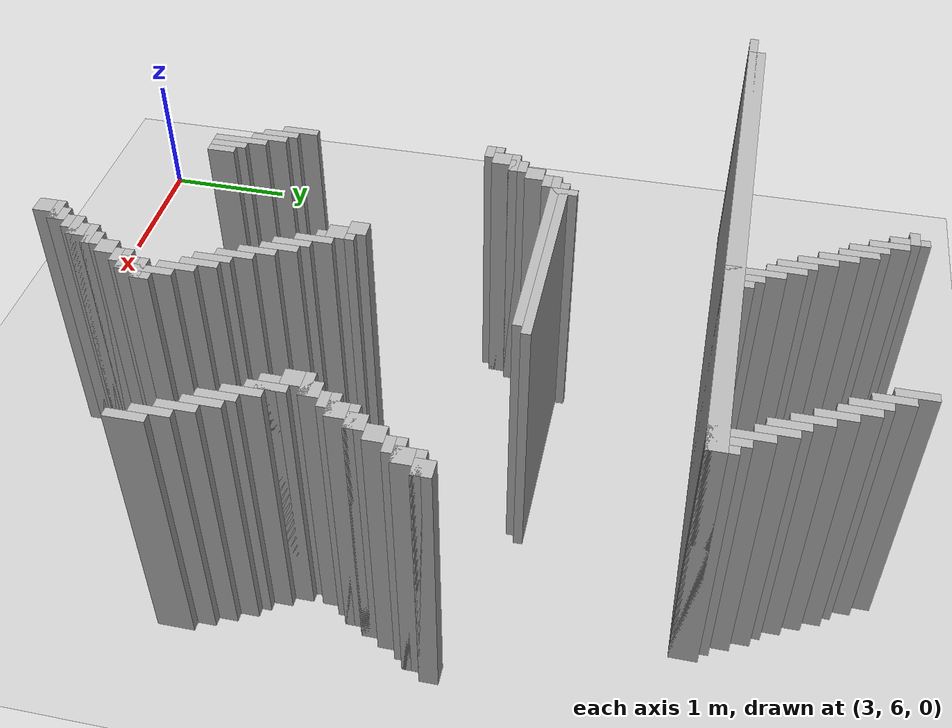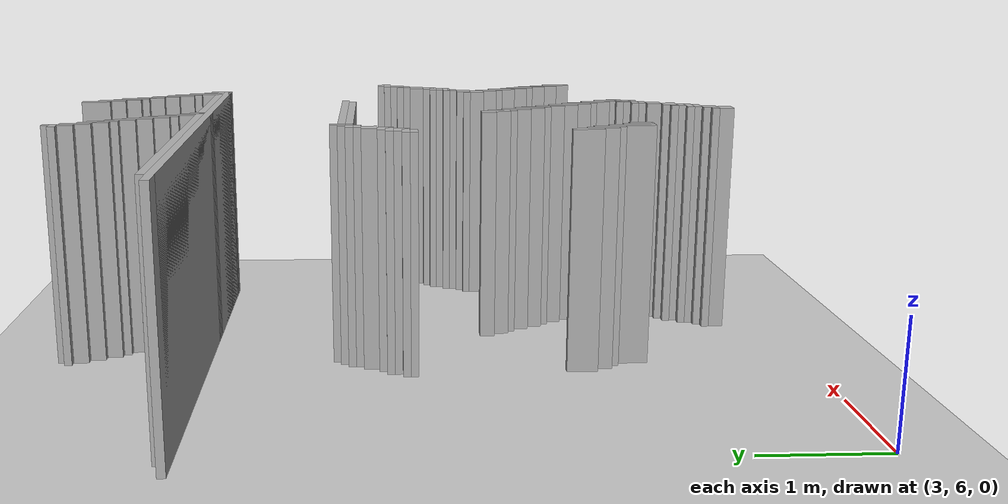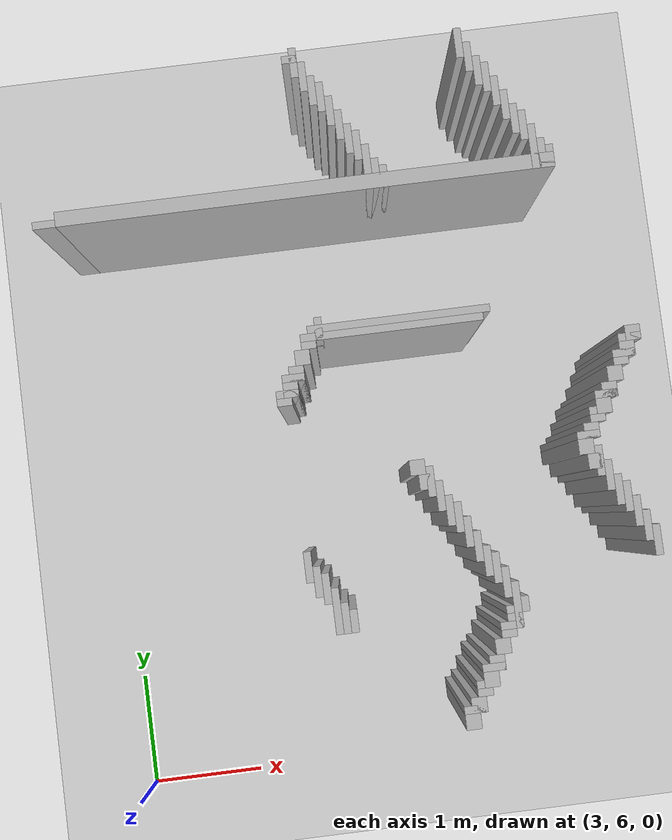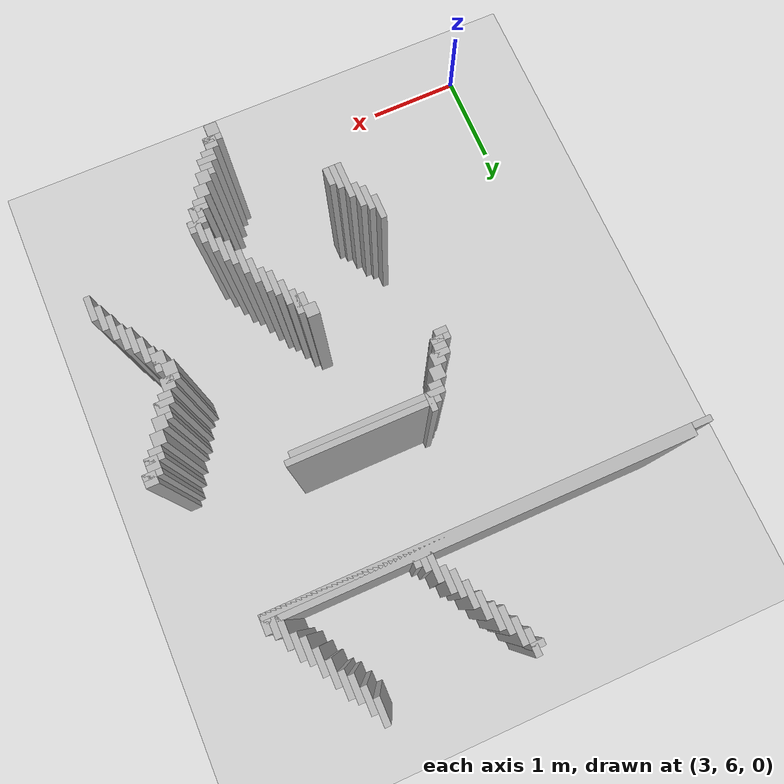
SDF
<sdf version="1.6">
 <world name="slam_world">
  <model name="ground_plane">
   <static>true</static>
   <link name="link">
    <collision name="collision">
     <geometry><plane><normal>0 0 1</normal><size>100 100</size></plane></geometry>
    </collision>
    <visual name="visual">
     <geometry><plane><normal>0 0 1</normal><size>100 100</size></plane></geometry>
     <material>
      <ambient>0.8 0.8 0.8 1</ambient>
      <diffuse>0.8 0.8 0.8 1</diffuse>
      <specular>0.8 0.8 0.8 1</specular>
     </material>
    </visual>
   </link>
  </model>
  <model name="wall_1166">
   <static>true</static>
   <pose>5.138297872340425 12.127659574468083 1.0 0 0 0</pose>
   <link name="link">
    <collision name="collision">
     <geometry><box><size>0.06382978723404255 0.2553191489361702 2.0</size></box></geometry>
    </collision>
    <visual name="visual">
     <geometry><box><size>0.06382978723404255 0.2553191489361702 2.0</size></box></geometry>
     <material><ambient>0.5 0.5 0.5 1</ambient><diffuse>0.7 0.7 0.7 1</diffuse></material>
    </visual>
   </link>
  </model>
  <model name="wall_1167">
   <static>true</static>
   <pose>6.542553191489361 12.127659574468083 1.0 0 0 0</pose>
   <link name="link">
    <collision name="collision">
     <geometry><box><size>0.06382978723404255 0.2553191489361702 2.0</size></box></geometry>
    </collision>
    <visual name="visual">
     <geometry><box><size>0.06382978723404255 0.2553191489361702 2.0</size></box></geometry>
     <material><ambient>0.5 0.5 0.5 1</ambient><diffuse>0.7 0.7 0.7 1</diffuse></material>
    </visual>
   </link>
  </model>
  <model name="wall_1173">
   <static>true</static>
   <pose>5.106382978723404 12.159574468085106 1.0 0 0 0</pose>
   <link name="link">
    <collision name="collision">
     <geometry><box><size>0.1276595744680851 0.06382978723404255 2.0</size></box></geometry>
    </collision>
    <visual name="visual">
     <geometry><box><size>0.1276595744680851 0.06382978723404255 2.0</size></box></geometry>
     <material><ambient>0.5 0.5 0.5 1</ambient><diffuse>0.7 0.7 0.7 1</diffuse></material>
    </visual>
   </link>
  </model>
  <model name="wall_1181">
   <static>true</static>
   <pose>5.202127659574468 11.999999999999998 1.0 0 0 0</pose>
   <link name="link">
    <collision name="collision">
     <geometry><box><size>0.06382978723404255 0.2553191489361702 2.0</size></box></geometry>
    </collision>
    <visual name="visual">
     <geometry><box><size>0.06382978723404255 0.2553191489361702 2.0</size></box></geometry>
     <material><ambient>0.5 0.5 0.5 1</ambient><diffuse>0.7 0.7 0.7 1</diffuse></material>
    </visual>
   </link>
  </model>
  <model name="wall_1182">
   <static>true</static>
   <pose>6.606382978723404 11.999999999999998 1.0 0 0 0</pose>
   <link name="link">
    <collision name="collision">
     <geometry><box><size>0.06382978723404255 0.2553191489361702 2.0</size></box></geometry>
    </collision>
    <visual name="visual">
     <geometry><box><size>0.06382978723404255 0.2553191489361702 2.0</size></box></geometry>
     <material><ambient>0.5 0.5 0.5 1</ambient><diffuse>0.7 0.7 0.7 1</diffuse></material>
    </visual>
   </link>
  </model>
  <model name="wall_1190">
   <static>true</static>
   <pose>5.26595744680851 11.872340425531913 1.0 0 0 0</pose>
   <link name="link">
    <collision name="collision">
     <geometry><box><size>0.06382978723404255 0.2553191489361702 2.0</size></box></geometry>
    </collision>
    <visual name="visual">
     <geometry><box><size>0.06382978723404255 0.2553191489361702 2.0</size></box></geometry>
     <material><ambient>0.5 0.5 0.5 1</ambient><diffuse>0.7 0.7 0.7 1</diffuse></material>
    </visual>
   </link>
  </model>
  <model name="wall_1191">
   <static>true</static>
   <pose>6.670212765957446 11.872340425531913 1.0 0 0 0</pose>
   <link name="link">
    <collision name="collision">
     <geometry><box><size>0.06382978723404255 0.2553191489361702 2.0</size></box></geometry>
    </collision>
    <visual name="visual">
     <geometry><box><size>0.06382978723404255 0.2553191489361702 2.0</size></box></geometry>
     <material><ambient>0.5 0.5 0.5 1</ambient><diffuse>0.7 0.7 0.7 1</diffuse></material>
    </visual>
   </link>
  </model>
  <model name="wall_1199">
   <static>true</static>
   <pose>5.329787234042553 11.808510638297872 1.0 0 0 0</pose>
   <link name="link">
    <collision name="collision">
     <geometry><box><size>0.06382978723404255 0.2553191489361702 2.0</size></box></geometry>
    </collision>
    <visual name="visual">
     <geometry><box><size>0.06382978723404255 0.2553191489361702 2.0</size></box></geometry>
     <material><ambient>0.5 0.5 0.5 1</ambient><diffuse>0.7 0.7 0.7 1</diffuse></material>
    </visual>
   </link>
  </model>
  <model name="wall_1200">
   <static>true</static>
   <pose>6.734042553191489 11.808510638297872 1.0 0 0 0</pose>
   <link name="link">
    <collision name="collision">
     <geometry><box><size>0.06382978723404255 0.2553191489361702 2.0</size></box></geometry>
    </collision>
    <visual name="visual">
     <geometry><box><size>0.06382978723404255 0.2553191489361702 2.0</size></box></geometry>
     <material><ambient>0.5 0.5 0.5 1</ambient><diffuse>0.7 0.7 0.7 1</diffuse></material>
    </visual>
   </link>
  </model>
  <model name="wall_1213">
   <static>true</static>
   <pose>5.3936170212765955 11.680851063829786 1.0 0 0 0</pose>
   <link name="link">
    <collision name="collision">
     <geometry><box><size>0.06382978723404255 0.2553191489361702 2.0</size></box></geometry>
    </collision>
    <visual name="visual">
     <geometry><box><size>0.06382978723404255 0.2553191489361702 2.0</size></box></geometry>
     <material><ambient>0.5 0.5 0.5 1</ambient><diffuse>0.7 0.7 0.7 1</diffuse></material>
    </visual>
   </link>
  </model>
  <model name="wall_1214">
   <static>true</static>
   <pose>6.797872340425531 11.680851063829786 1.0 0 0 0</pose>
   <link name="link">
    <collision name="collision">
     <geometry><box><size>0.06382978723404255 0.2553191489361702 2.0</size></box></geometry>
    </collision>
    <visual name="visual">
     <geometry><box><size>0.06382978723404255 0.2553191489361702 2.0</size></box></geometry>
     <material><ambient>0.5 0.5 0.5 1</ambient><diffuse>0.7 0.7 0.7 1</diffuse></material>
    </visual>
   </link>
  </model>
  <model name="wall_1226">
   <static>true</static>
   <pose>5.457446808510638 11.553191489361701 1.0 0 0 0</pose>
   <link name="link">
    <collision name="collision">
     <geometry><box><size>0.06382978723404255 0.2553191489361702 2.0</size></box></geometry>
    </collision>
    <visual name="visual">
     <geometry><box><size>0.06382978723404255 0.2553191489361702 2.0</size></box></geometry>
     <material><ambient>0.5 0.5 0.5 1</ambient><diffuse>0.7 0.7 0.7 1</diffuse></material>
    </visual>
   </link>
  </model>
  <model name="wall_1227">
   <static>true</static>
   <pose>6.861702127659574 11.553191489361701 1.0 0 0 0</pose>
   <link name="link">
    <collision name="collision">
     <geometry><box><size>0.06382978723404255 0.2553191489361702 2.0</size></box></geometry>
    </collision>
    <visual name="visual">
     <geometry><box><size>0.06382978723404255 0.2553191489361702 2.0</size></box></geometry>
     <material><ambient>0.5 0.5 0.5 1</ambient><diffuse>0.7 0.7 0.7 1</diffuse></material>
    </visual>
   </link>
  </model>
  <model name="wall_1235">
   <static>true</static>
   <pose>5.5212765957446805 11.425531914893616 1.0 0 0 0</pose>
   <link name="link">
    <collision name="collision">
     <geometry><box><size>0.06382978723404255 0.2553191489361702 2.0</size></box></geometry>
    </collision>
    <visual name="visual">
     <geometry><box><size>0.06382978723404255 0.2553191489361702 2.0</size></box></geometry>
     <material><ambient>0.5 0.5 0.5 1</ambient><diffuse>0.7 0.7 0.7 1</diffuse></material>
    </visual>
   </link>
  </model>
  <model name="wall_1236">
   <static>true</static>
   <pose>6.925531914893616 11.425531914893616 1.0 0 0 0</pose>
   <link name="link">
    <collision name="collision">
     <geometry><box><size>0.06382978723404255 0.2553191489361702 2.0</size></box></geometry>
    </collision>
    <visual name="visual">
     <geometry><box><size>0.06382978723404255 0.2553191489361702 2.0</size></box></geometry>
     <material><ambient>0.5 0.5 0.5 1</ambient><diffuse>0.7 0.7 0.7 1</diffuse></material>
    </visual>
   </link>
  </model>
  <model name="wall_1244">
   <static>true</static>
   <pose>5.585106382978723 11.361702127659573 1.0 0 0 0</pose>
   <link name="link">
    <collision name="collision">
     <geometry><box><size>0.06382978723404255 0.2553191489361702 2.0</size></box></geometry>
    </collision>
    <visual name="visual">
     <geometry><box><size>0.06382978723404255 0.2553191489361702 2.0</size></box></geometry>
     <material><ambient>0.5 0.5 0.5 1</ambient><diffuse>0.7 0.7 0.7 1</diffuse></material>
    </visual>
   </link>
  </model>
  <model name="wall_1245">
   <static>true</static>
   <pose>6.989361702127659 11.361702127659573 1.0 0 0 0</pose>
   <link name="link">
    <collision name="collision">
     <geometry><box><size>0.06382978723404255 0.2553191489361702 2.0</size></box></geometry>
    </collision>
    <visual name="visual">
     <geometry><box><size>0.06382978723404255 0.2553191489361702 2.0</size></box></geometry>
     <material><ambient>0.5 0.5 0.5 1</ambient><diffuse>0.7 0.7 0.7 1</diffuse></material>
    </visual>
   </link>
  </model>
  <model name="wall_1257">
   <static>true</static>
   <pose>5.648936170212766 11.170212765957446 1.0 0 0 0</pose>
   <link name="link">
    <collision name="collision">
     <geometry><box><size>0.06382978723404255 0.3829787234042553 2.0</size></box></geometry>
    </collision>
    <visual name="visual">
     <geometry><box><size>0.06382978723404255 0.3829787234042553 2.0</size></box></geometry>
     <material><ambient>0.5 0.5 0.5 1</ambient><diffuse>0.7 0.7 0.7 1</diffuse></material>
    </visual>
   </link>
  </model>
  <model name="wall_1258">
   <static>true</static>
   <pose>7.053191489361701 11.170212765957446 1.0 0 0 0</pose>
   <link name="link">
    <collision name="collision">
     <geometry><box><size>0.06382978723404255 0.3829787234042553 2.0</size></box></geometry>
    </collision>
    <visual name="visual">
     <geometry><box><size>0.06382978723404255 0.3829787234042553 2.0</size></box></geometry>
     <material><ambient>0.5 0.5 0.5 1</ambient><diffuse>0.7 0.7 0.7 1</diffuse></material>
    </visual>
   </link>
  </model>
  <model name="wall_1270">
   <static>true</static>
   <pose>5.712765957446808 11.106382978723403 1.0 0 0 0</pose>
   <link name="link">
    <collision name="collision">
     <geometry><box><size>0.06382978723404255 0.2553191489361702 2.0</size></box></geometry>
    </collision>
    <visual name="visual">
     <geometry><box><size>0.06382978723404255 0.2553191489361702 2.0</size></box></geometry>
     <material><ambient>0.5 0.5 0.5 1</ambient><diffuse>0.7 0.7 0.7 1</diffuse></material>
    </visual>
   </link>
  </model>
  <model name="wall_1271">
   <static>true</static>
   <pose>7.117021276595744 11.106382978723403 1.0 0 0 0</pose>
   <link name="link">
    <collision name="collision">
     <geometry><box><size>0.06382978723404255 0.2553191489361702 2.0</size></box></geometry>
    </collision>
    <visual name="visual">
     <geometry><box><size>0.06382978723404255 0.2553191489361702 2.0</size></box></geometry>
     <material><ambient>0.5 0.5 0.5 1</ambient><diffuse>0.7 0.7 0.7 1</diffuse></material>
    </visual>
   </link>
  </model>
  <model name="wall_1278">
   <static>true</static>
   <pose>5.776595744680851 11.074468085106382 1.0 0 0 0</pose>
   <link name="link">
    <collision name="collision">
     <geometry><box><size>0.06382978723404255 0.19148936170212766 2.0</size></box></geometry>
    </collision>
    <visual name="visual">
     <geometry><box><size>0.06382978723404255 0.19148936170212766 2.0</size></box></geometry>
     <material><ambient>0.5 0.5 0.5 1</ambient><diffuse>0.7 0.7 0.7 1</diffuse></material>
    </visual>
   </link>
  </model>
  <model name="wall_1279">
   <static>true</static>
   <pose>7.180851063829786 11.074468085106382 1.0 0 0 0</pose>
   <link name="link">
    <collision name="collision">
     <geometry><box><size>0.06382978723404255 0.19148936170212766 2.0</size></box></geometry>
    </collision>
    <visual name="visual">
     <geometry><box><size>0.06382978723404255 0.19148936170212766 2.0</size></box></geometry>
     <material><ambient>0.5 0.5 0.5 1</ambient><diffuse>0.7 0.7 0.7 1</diffuse></material>
    </visual>
   </link>
  </model>
  <model name="wall_1284">
   <static>true</static>
   <pose>5.106382978723404 11.042553191489361 1.0 0 0 0</pose>
   <link name="link">
    <collision name="collision">
     <geometry><box><size>4.212765957446808 0.1276595744680851 2.0</size></box></geometry>
    </collision>
    <visual name="visual">
     <geometry><box><size>4.212765957446808 0.1276595744680851 2.0</size></box></geometry>
     <material><ambient>0.5 0.5 0.5 1</ambient><diffuse>0.7 0.7 0.7 1</diffuse></material>
    </visual>
   </link>
  </model>
  <model name="wall_1289">
   <static>true</static>
   <pose>5.01063829787234 11.01063829787234 1.0 0 0 0</pose>
   <link name="link">
    <collision name="collision">
     <geometry><box><size>4.404255319148936 0.06382978723404255 2.0</size></box></geometry>
    </collision>
    <visual name="visual">
     <geometry><box><size>4.404255319148936 0.06382978723404255 2.0</size></box></geometry>
     <material><ambient>0.5 0.5 0.5 1</ambient><diffuse>0.7 0.7 0.7 1</diffuse></material>
    </visual>
   </link>
  </model>
  <model name="wall_1352">
   <static>true</static>
   <pose>5.074468085106383 9.861702127659573 1.0 0 0 0</pose>
   <link name="link">
    <collision name="collision">
     <geometry><box><size>0.06382978723404255 0.19148936170212766 2.0</size></box></geometry>
    </collision>
    <visual name="visual">
     <geometry><box><size>0.06382978723404255 0.19148936170212766 2.0</size></box></geometry>
     <material><ambient>0.5 0.5 0.5 1</ambient><diffuse>0.7 0.7 0.7 1</diffuse></material>
    </visual>
   </link>
  </model>
  <model name="wall_1356">
   <static>true</static>
   <pose>5.744680851063829 9.861702127659573 1.0 0 0 0</pose>
   <link name="link">
    <collision name="collision">
     <geometry><box><size>1.5319148936170213 0.06382978723404255 2.0</size></box></geometry>
    </collision>
    <visual name="visual">
     <geometry><box><size>1.5319148936170213 0.06382978723404255 2.0</size></box></geometry>
     <material><ambient>0.5 0.5 0.5 1</ambient><diffuse>0.7 0.7 0.7 1</diffuse></material>
    </visual>
   </link>
  </model>
  <model name="wall_1365">
   <static>true</static>
   <pose>5.680851063829786 9.797872340425531 1.0 0 0 0</pose>
   <link name="link">
    <collision name="collision">
     <geometry><box><size>1.5319148936170213 0.06382978723404255 2.0</size></box></geometry>
    </collision>
    <visual name="visual">
     <geometry><box><size>1.5319148936170213 0.06382978723404255 2.0</size></box></geometry>
     <material><ambient>0.5 0.5 0.5 1</ambient><diffuse>0.7 0.7 0.7 1</diffuse></material>
    </visual>
   </link>
  </model>
  <model name="wall_1373">
   <static>true</static>
   <pose>4.978723404255319 9.734042553191488 1.0 0 0 0</pose>
   <link name="link">
    <collision name="collision">
     <geometry><box><size>0.1276595744680851 0.06382978723404255 2.0</size></box></geometry>
    </collision>
    <visual name="visual">
     <geometry><box><size>0.1276595744680851 0.06382978723404255 2.0</size></box></geometry>
     <material><ambient>0.5 0.5 0.5 1</ambient><diffuse>0.7 0.7 0.7 1</diffuse></material>
    </visual>
   </link>
  </model>
  <model name="wall_1381">
   <static>true</static>
   <pose>4.914893617021276 9.638297872340425 1.0 0 0 0</pose>
   <link name="link">
    <collision name="collision">
     <geometry><box><size>0.1276595744680851 0.1276595744680851 2.0</size></box></geometry>
    </collision>
    <visual name="visual">
     <geometry><box><size>0.1276595744680851 0.1276595744680851 2.0</size></box></geometry>
     <material><ambient>0.5 0.5 0.5 1</ambient><diffuse>0.7 0.7 0.7 1</diffuse></material>
    </visual>
   </link>
  </model>
  <model name="wall_1392">
   <static>true</static>
   <pose>4.8510638297872335 9.51063829787234 1.0 0 0 0</pose>
   <link name="link">
    <collision name="collision">
     <geometry><box><size>0.1276595744680851 0.1276595744680851 2.0</size></box></geometry>
    </collision>
    <visual name="visual">
     <geometry><box><size>0.1276595744680851 0.1276595744680851 2.0</size></box></geometry>
     <material><ambient>0.5 0.5 0.5 1</ambient><diffuse>0.7 0.7 0.7 1</diffuse></material>
    </visual>
   </link>
  </model>
  <model name="wall_1393">
   <static>true</static>
   <pose>7.659574468085106 9.51063829787234 1.0 0 0 0</pose>
   <link name="link">
    <collision name="collision">
     <geometry><box><size>0.1276595744680851 0.1276595744680851 2.0</size></box></geometry>
    </collision>
    <visual name="visual">
     <geometry><box><size>0.1276595744680851 0.1276595744680851 2.0</size></box></geometry>
     <material><ambient>0.5 0.5 0.5 1</ambient><diffuse>0.7 0.7 0.7 1</diffuse></material>
    </visual>
   </link>
  </model>
  <model name="wall_1403">
   <static>true</static>
   <pose>4.819148936170213 9.478723404255318 1.0 0 0 0</pose>
   <link name="link">
    <collision name="collision">
     <geometry><box><size>0.19148936170212766 0.06382978723404255 2.0</size></box></geometry>
    </collision>
    <visual name="visual">
     <geometry><box><size>0.19148936170212766 0.06382978723404255 2.0</size></box></geometry>
     <material><ambient>0.5 0.5 0.5 1</ambient><diffuse>0.7 0.7 0.7 1</diffuse></material>
    </visual>
   </link>
  </model>
  <model name="wall_1404">
   <static>true</static>
   <pose>7.627659574468084 9.478723404255318 1.0 0 0 0</pose>
   <link name="link">
    <collision name="collision">
     <geometry><box><size>0.19148936170212766 0.06382978723404255 2.0</size></box></geometry>
    </collision>
    <visual name="visual">
     <geometry><box><size>0.19148936170212766 0.06382978723404255 2.0</size></box></geometry>
     <material><ambient>0.5 0.5 0.5 1</ambient><diffuse>0.7 0.7 0.7 1</diffuse></material>
    </visual>
   </link>
  </model>
  <model name="wall_1412">
   <static>true</static>
   <pose>4.787234042553191 9.382978723404255 1.0 0 0 0</pose>
   <link name="link">
    <collision name="collision">
     <geometry><box><size>0.1276595744680851 0.1276595744680851 2.0</size></box></geometry>
    </collision>
    <visual name="visual">
     <geometry><box><size>0.1276595744680851 0.1276595744680851 2.0</size></box></geometry>
     <material><ambient>0.5 0.5 0.5 1</ambient><diffuse>0.7 0.7 0.7 1</diffuse></material>
    </visual>
   </link>
  </model>
  <model name="wall_1413">
   <static>true</static>
   <pose>7.595744680851063 9.382978723404255 1.0 0 0 0</pose>
   <link name="link">
    <collision name="collision">
     <geometry><box><size>0.1276595744680851 0.1276595744680851 2.0</size></box></geometry>
    </collision>
    <visual name="visual">
     <geometry><box><size>0.1276595744680851 0.1276595744680851 2.0</size></box></geometry>
     <material><ambient>0.5 0.5 0.5 1</ambient><diffuse>0.7 0.7 0.7 1</diffuse></material>
    </visual>
   </link>
  </model>
  <model name="wall_1422">
   <static>true</static>
   <pose>4.75531914893617 9.351063829787233 1.0 0 0 0</pose>
   <link name="link">
    <collision name="collision">
     <geometry><box><size>0.19148936170212766 0.06382978723404255 2.0</size></box></geometry>
    </collision>
    <visual name="visual">
     <geometry><box><size>0.19148936170212766 0.06382978723404255 2.0</size></box></geometry>
     <material><ambient>0.5 0.5 0.5 1</ambient><diffuse>0.7 0.7 0.7 1</diffuse></material>
    </visual>
   </link>
  </model>
  <model name="wall_1423">
   <static>true</static>
   <pose>7.563829787234042 9.351063829787233 1.0 0 0 0</pose>
   <link name="link">
    <collision name="collision">
     <geometry><box><size>0.19148936170212766 0.06382978723404255 2.0</size></box></geometry>
    </collision>
    <visual name="visual">
     <geometry><box><size>0.19148936170212766 0.06382978723404255 2.0</size></box></geometry>
     <material><ambient>0.5 0.5 0.5 1</ambient><diffuse>0.7 0.7 0.7 1</diffuse></material>
    </visual>
   </link>
  </model>
  <model name="wall_1430">
   <static>true</static>
   <pose>4.723404255319148 9.287234042553191 1.0 0 0 0</pose>
   <link name="link">
    <collision name="collision">
     <geometry><box><size>0.1276595744680851 0.06382978723404255 2.0</size></box></geometry>
    </collision>
    <visual name="visual">
     <geometry><box><size>0.1276595744680851 0.06382978723404255 2.0</size></box></geometry>
     <material><ambient>0.5 0.5 0.5 1</ambient><diffuse>0.7 0.7 0.7 1</diffuse></material>
    </visual>
   </link>
  </model>
  <model name="wall_1431">
   <static>true</static>
   <pose>7.531914893617021 9.287234042553191 1.0 0 0 0</pose>
   <link name="link">
    <collision name="collision">
     <geometry><box><size>0.1276595744680851 0.06382978723404255 2.0</size></box></geometry>
    </collision>
    <visual name="visual">
     <geometry><box><size>0.1276595744680851 0.06382978723404255 2.0</size></box></geometry>
     <material><ambient>0.5 0.5 0.5 1</ambient><diffuse>0.7 0.7 0.7 1</diffuse></material>
    </visual>
   </link>
  </model>
  <model name="wall_1440">
   <static>true</static>
   <pose>7.468085106382978 9.191489361702127 1.0 0 0 0</pose>
   <link name="link">
    <collision name="collision">
     <geometry><box><size>0.1276595744680851 0.1276595744680851 2.0</size></box></geometry>
    </collision>
    <visual name="visual">
     <geometry><box><size>0.1276595744680851 0.1276595744680851 2.0</size></box></geometry>
     <material><ambient>0.5 0.5 0.5 1</ambient><diffuse>0.7 0.7 0.7 1</diffuse></material>
    </visual>
   </link>
  </model>
  <model name="wall_1451">
   <static>true</static>
   <pose>7.404255319148936 9.063829787234042 1.0 0 0 0</pose>
   <link name="link">
    <collision name="collision">
     <geometry><box><size>0.1276595744680851 0.1276595744680851 2.0</size></box></geometry>
    </collision>
    <visual name="visual">
     <geometry><box><size>0.1276595744680851 0.1276595744680851 2.0</size></box></geometry>
     <material><ambient>0.5 0.5 0.5 1</ambient><diffuse>0.7 0.7 0.7 1</diffuse></material>
    </visual>
   </link>
  </model>
  <model name="wall_1462">
   <static>true</static>
   <pose>7.372340425531914 9.03191489361702 1.0 0 0 0</pose>
   <link name="link">
    <collision name="collision">
     <geometry><box><size>0.19148936170212766 0.06382978723404255 2.0</size></box></geometry>
    </collision>
    <visual name="visual">
     <geometry><box><size>0.19148936170212766 0.06382978723404255 2.0</size></box></geometry>
     <material><ambient>0.5 0.5 0.5 1</ambient><diffuse>0.7 0.7 0.7 1</diffuse></material>
    </visual>
   </link>
  </model>
  <model name="wall_1470">
   <static>true</static>
   <pose>7.340425531914893 8.936170212765957 1.0 0 0 0</pose>
   <link name="link">
    <collision name="collision">
     <geometry><box><size>0.1276595744680851 0.1276595744680851 2.0</size></box></geometry>
    </collision>
    <visual name="visual">
     <geometry><box><size>0.1276595744680851 0.1276595744680851 2.0</size></box></geometry>
     <material><ambient>0.5 0.5 0.5 1</ambient><diffuse>0.7 0.7 0.7 1</diffuse></material>
    </visual>
   </link>
  </model>
  <model name="wall_1479">
   <static>true</static>
   <pose>7.3085106382978715 8.904255319148936 1.0 0 0 0</pose>
   <link name="link">
    <collision name="collision">
     <geometry><box><size>0.19148936170212766 0.06382978723404255 2.0</size></box></geometry>
    </collision>
    <visual name="visual">
     <geometry><box><size>0.19148936170212766 0.06382978723404255 2.0</size></box></geometry>
     <material><ambient>0.5 0.5 0.5 1</ambient><diffuse>0.7 0.7 0.7 1</diffuse></material>
    </visual>
   </link>
  </model>
  <model name="wall_1487">
   <static>true</static>
   <pose>7.276595744680851 8.840425531914892 1.0 0 0 0</pose>
   <link name="link">
    <collision name="collision">
     <geometry><box><size>0.1276595744680851 0.06382978723404255 2.0</size></box></geometry>
    </collision>
    <visual name="visual">
     <geometry><box><size>0.1276595744680851 0.06382978723404255 2.0</size></box></geometry>
     <material><ambient>0.5 0.5 0.5 1</ambient><diffuse>0.7 0.7 0.7 1</diffuse></material>
    </visual>
   </link>
  </model>
  <model name="wall_1495">
   <static>true</static>
   <pose>7.212765957446808 8.74468085106383 1.0 0 0 0</pose>
   <link name="link">
    <collision name="collision">
     <geometry><box><size>0.1276595744680851 0.1276595744680851 2.0</size></box></geometry>
    </collision>
    <visual name="visual">
     <geometry><box><size>0.1276595744680851 0.1276595744680851 2.0</size></box></geometry>
     <material><ambient>0.5 0.5 0.5 1</ambient><diffuse>0.7 0.7 0.7 1</diffuse></material>
    </visual>
   </link>
  </model>
  <model name="wall_1503">
   <static>true</static>
   <pose>7.180851063829786 8.712765957446807 1.0 0 0 0</pose>
   <link name="link">
    <collision name="collision">
     <geometry><box><size>0.19148936170212766 0.06382978723404255 2.0</size></box></geometry>
    </collision>
    <visual name="visual">
     <geometry><box><size>0.19148936170212766 0.06382978723404255 2.0</size></box></geometry>
     <material><ambient>0.5 0.5 0.5 1</ambient><diffuse>0.7 0.7 0.7 1</diffuse></material>
    </visual>
   </link>
  </model>
  <model name="wall_1510">
   <static>true</static>
   <pose>5.744680851063829 8.617021276595745 1.0 0 0 0</pose>
   <link name="link">
    <collision name="collision">
     <geometry><box><size>0.1276595744680851 0.1276595744680851 2.0</size></box></geometry>
    </collision>
    <visual name="visual">
     <geometry><box><size>0.1276595744680851 0.1276595744680851 2.0</size></box></geometry>
     <material><ambient>0.5 0.5 0.5 1</ambient><diffuse>0.7 0.7 0.7 1</diffuse></material>
    </visual>
   </link>
  </model>
  <model name="wall_1511">
   <static>true</static>
   <pose>7.148936170212766 8.617021276595745 1.0 0 0 0</pose>
   <link name="link">
    <collision name="collision">
     <geometry><box><size>0.1276595744680851 0.1276595744680851 2.0</size></box></geometry>
    </collision>
    <visual name="visual">
     <geometry><box><size>0.1276595744680851 0.1276595744680851 2.0</size></box></geometry>
     <material><ambient>0.5 0.5 0.5 1</ambient><diffuse>0.7 0.7 0.7 1</diffuse></material>
    </visual>
   </link>
  </model>
  <model name="wall_1519">
   <static>true</static>
   <pose>5.840425531914893 8.48936170212766 1.0 0 0 0</pose>
   <link name="link">
    <collision name="collision">
     <geometry><box><size>0.06382978723404255 0.2553191489361702 2.0</size></box></geometry>
    </collision>
    <visual name="visual">
     <geometry><box><size>0.06382978723404255 0.2553191489361702 2.0</size></box></geometry>
     <material><ambient>0.5 0.5 0.5 1</ambient><diffuse>0.7 0.7 0.7 1</diffuse></material>
    </visual>
   </link>
  </model>
  <model name="wall_1520">
   <static>true</static>
   <pose>7.244680851063829 8.48936170212766 1.0 0 0 0</pose>
   <link name="link">
    <collision name="collision">
     <geometry><box><size>0.06382978723404255 0.2553191489361702 2.0</size></box></geometry>
    </collision>
    <visual name="visual">
     <geometry><box><size>0.06382978723404255 0.2553191489361702 2.0</size></box></geometry>
     <material><ambient>0.5 0.5 0.5 1</ambient><diffuse>0.7 0.7 0.7 1</diffuse></material>
    </visual>
   </link>
  </model>
  <model name="wall_1526">
   <static>true</static>
   <pose>5.8085106382978715 8.48936170212766 1.0 0 0 0</pose>
   <link name="link">
    <collision name="collision">
     <geometry><box><size>0.1276595744680851 0.1276595744680851 2.0</size></box></geometry>
    </collision>
    <visual name="visual">
     <geometry><box><size>0.1276595744680851 0.1276595744680851 2.0</size></box></geometry>
     <material><ambient>0.5 0.5 0.5 1</ambient><diffuse>0.7 0.7 0.7 1</diffuse></material>
    </visual>
   </link>
  </model>
  <model name="wall_1527">
   <static>true</static>
   <pose>7.212765957446808 8.48936170212766 1.0 0 0 0</pose>
   <link name="link">
    <collision name="collision">
     <geometry><box><size>0.1276595744680851 0.1276595744680851 2.0</size></box></geometry>
    </collision>
    <visual name="visual">
     <geometry><box><size>0.1276595744680851 0.1276595744680851 2.0</size></box></geometry>
     <material><ambient>0.5 0.5 0.5 1</ambient><diffuse>0.7 0.7 0.7 1</diffuse></material>
    </visual>
   </link>
  </model>
  <model name="wall_1534">
   <static>true</static>
   <pose>5.904255319148936 8.361702127659575 1.0 0 0 0</pose>
   <link name="link">
    <collision name="collision">
     <geometry><box><size>0.06382978723404255 0.2553191489361702 2.0</size></box></geometry>
    </collision>
    <visual name="visual">
     <geometry><box><size>0.06382978723404255 0.2553191489361702 2.0</size></box></geometry>
     <material><ambient>0.5 0.5 0.5 1</ambient><diffuse>0.7 0.7 0.7 1</diffuse></material>
    </visual>
   </link>
  </model>
  <model name="wall_1535">
   <static>true</static>
   <pose>7.3085106382978715 8.361702127659575 1.0 0 0 0</pose>
   <link name="link">
    <collision name="collision">
     <geometry><box><size>0.06382978723404255 0.2553191489361702 2.0</size></box></geometry>
    </collision>
    <visual name="visual">
     <geometry><box><size>0.06382978723404255 0.2553191489361702 2.0</size></box></geometry>
     <material><ambient>0.5 0.5 0.5 1</ambient><diffuse>0.7 0.7 0.7 1</diffuse></material>
    </visual>
   </link>
  </model>
  <model name="wall_1543">
   <static>true</static>
   <pose>5.968085106382978 8.23404255319149 1.0 0 0 0</pose>
   <link name="link">
    <collision name="collision">
     <geometry><box><size>0.06382978723404255 0.2553191489361702 2.0</size></box></geometry>
    </collision>
    <visual name="visual">
     <geometry><box><size>0.06382978723404255 0.2553191489361702 2.0</size></box></geometry>
     <material><ambient>0.5 0.5 0.5 1</ambient><diffuse>0.7 0.7 0.7 1</diffuse></material>
    </visual>
   </link>
  </model>
  <model name="wall_1544">
   <static>true</static>
   <pose>7.372340425531914 8.23404255319149 1.0 0 0 0</pose>
   <link name="link">
    <collision name="collision">
     <geometry><box><size>0.06382978723404255 0.2553191489361702 2.0</size></box></geometry>
    </collision>
    <visual name="visual">
     <geometry><box><size>0.06382978723404255 0.2553191489361702 2.0</size></box></geometry>
     <material><ambient>0.5 0.5 0.5 1</ambient><diffuse>0.7 0.7 0.7 1</diffuse></material>
    </visual>
   </link>
  </model>
  <model name="wall_1551">
   <static>true</static>
   <pose>6.031914893617021 8.170212765957446 1.0 0 0 0</pose>
   <link name="link">
    <collision name="collision">
     <geometry><box><size>0.06382978723404255 0.2553191489361702 2.0</size></box></geometry>
    </collision>
    <visual name="visual">
     <geometry><box><size>0.06382978723404255 0.2553191489361702 2.0</size></box></geometry>
     <material><ambient>0.5 0.5 0.5 1</ambient><diffuse>0.7 0.7 0.7 1</diffuse></material>
    </visual>
   </link>
  </model>
  <model name="wall_1552">
   <static>true</static>
   <pose>7.436170212765957 8.170212765957446 1.0 0 0 0</pose>
   <link name="link">
    <collision name="collision">
     <geometry><box><size>0.06382978723404255 0.2553191489361702 2.0</size></box></geometry>
    </collision>
    <visual name="visual">
     <geometry><box><size>0.06382978723404255 0.2553191489361702 2.0</size></box></geometry>
     <material><ambient>0.5 0.5 0.5 1</ambient><diffuse>0.7 0.7 0.7 1</diffuse></material>
    </visual>
   </link>
  </model>
  <model name="wall_1560">
   <static>true</static>
   <pose>6.095744680851063 8.042553191489361 1.0 0 0 0</pose>
   <link name="link">
    <collision name="collision">
     <geometry><box><size>0.06382978723404255 0.2553191489361702 2.0</size></box></geometry>
    </collision>
    <visual name="visual">
     <geometry><box><size>0.06382978723404255 0.2553191489361702 2.0</size></box></geometry>
     <material><ambient>0.5 0.5 0.5 1</ambient><diffuse>0.7 0.7 0.7 1</diffuse></material>
    </visual>
   </link>
  </model>
  <model name="wall_1561">
   <static>true</static>
   <pose>7.499999999999999 8.042553191489361 1.0 0 0 0</pose>
   <link name="link">
    <collision name="collision">
     <geometry><box><size>0.06382978723404255 0.2553191489361702 2.0</size></box></geometry>
    </collision>
    <visual name="visual">
     <geometry><box><size>0.06382978723404255 0.2553191489361702 2.0</size></box></geometry>
     <material><ambient>0.5 0.5 0.5 1</ambient><diffuse>0.7 0.7 0.7 1</diffuse></material>
    </visual>
   </link>
  </model>
  <model name="wall_1568">
   <static>true</static>
   <pose>4.75531914893617 7.914893617021276 1.0 0 0 0</pose>
   <link name="link">
    <collision name="collision">
     <geometry><box><size>0.06382978723404255 0.2553191489361702 2.0</size></box></geometry>
    </collision>
    <visual name="visual">
     <geometry><box><size>0.06382978723404255 0.2553191489361702 2.0</size></box></geometry>
     <material><ambient>0.5 0.5 0.5 1</ambient><diffuse>0.7 0.7 0.7 1</diffuse></material>
    </visual>
   </link>
  </model>
  <model name="wall_1569">
   <static>true</static>
   <pose>6.159574468085106 7.914893617021276 1.0 0 0 0</pose>
   <link name="link">
    <collision name="collision">
     <geometry><box><size>0.06382978723404255 0.2553191489361702 2.0</size></box></geometry>
    </collision>
    <visual name="visual">
     <geometry><box><size>0.06382978723404255 0.2553191489361702 2.0</size></box></geometry>
     <material><ambient>0.5 0.5 0.5 1</ambient><diffuse>0.7 0.7 0.7 1</diffuse></material>
    </visual>
   </link>
  </model>
  <model name="wall_1570">
   <static>true</static>
   <pose>7.563829787234042 7.914893617021276 1.0 0 0 0</pose>
   <link name="link">
    <collision name="collision">
     <geometry><box><size>0.06382978723404255 0.2553191489361702 2.0</size></box></geometry>
    </collision>
    <visual name="visual">
     <geometry><box><size>0.06382978723404255 0.2553191489361702 2.0</size></box></geometry>
     <material><ambient>0.5 0.5 0.5 1</ambient><diffuse>0.7 0.7 0.7 1</diffuse></material>
    </visual>
   </link>
  </model>
  <model name="wall_1576">
   <static>true</static>
   <pose>4.819148936170213 7.787234042553191 1.0 0 0 0</pose>
   <link name="link">
    <collision name="collision">
     <geometry><box><size>0.06382978723404255 0.2553191489361702 2.0</size></box></geometry>
    </collision>
    <visual name="visual">
     <geometry><box><size>0.06382978723404255 0.2553191489361702 2.0</size></box></geometry>
     <material><ambient>0.5 0.5 0.5 1</ambient><diffuse>0.7 0.7 0.7 1</diffuse></material>
    </visual>
   </link>
  </model>
  <model name="wall_1577">
   <static>true</static>
   <pose>6.223404255319148 7.787234042553191 1.0 0 0 0</pose>
   <link name="link">
    <collision name="collision">
     <geometry><box><size>0.06382978723404255 0.2553191489361702 2.0</size></box></geometry>
    </collision>
    <visual name="visual">
     <geometry><box><size>0.06382978723404255 0.2553191489361702 2.0</size></box></geometry>
     <material><ambient>0.5 0.5 0.5 1</ambient><diffuse>0.7 0.7 0.7 1</diffuse></material>
    </visual>
   </link>
  </model>
  <model name="wall_1578">
   <static>true</static>
   <pose>7.627659574468084 7.787234042553191 1.0 0 0 0</pose>
   <link name="link">
    <collision name="collision">
     <geometry><box><size>0.06382978723404255 0.2553191489361702 2.0</size></box></geometry>
    </collision>
    <visual name="visual">
     <geometry><box><size>0.06382978723404255 0.2553191489361702 2.0</size></box></geometry>
     <material><ambient>0.5 0.5 0.5 1</ambient><diffuse>0.7 0.7 0.7 1</diffuse></material>
    </visual>
   </link>
  </model>
  <model name="wall_1584">
   <static>true</static>
   <pose>4.882978723404255 7.723404255319148 1.0 0 0 0</pose>
   <link name="link">
    <collision name="collision">
     <geometry><box><size>0.06382978723404255 0.2553191489361702 2.0</size></box></geometry>
    </collision>
    <visual name="visual">
     <geometry><box><size>0.06382978723404255 0.2553191489361702 2.0</size></box></geometry>
     <material><ambient>0.5 0.5 0.5 1</ambient><diffuse>0.7 0.7 0.7 1</diffuse></material>
    </visual>
   </link>
  </model>
  <model name="wall_1585">
   <static>true</static>
   <pose>6.287234042553191 7.723404255319148 1.0 0 0 0</pose>
   <link name="link">
    <collision name="collision">
     <geometry><box><size>0.06382978723404255 0.2553191489361702 2.0</size></box></geometry>
    </collision>
    <visual name="visual">
     <geometry><box><size>0.06382978723404255 0.2553191489361702 2.0</size></box></geometry>
     <material><ambient>0.5 0.5 0.5 1</ambient><diffuse>0.7 0.7 0.7 1</diffuse></material>
    </visual>
   </link>
  </model>
  <model name="wall_1593">
   <static>true</static>
   <pose>4.946808510638298 7.531914893617021 1.0 0 0 0</pose>
   <link name="link">
    <collision name="collision">
     <geometry><box><size>0.06382978723404255 0.3829787234042553 2.0</size></box></geometry>
    </collision>
    <visual name="visual">
     <geometry><box><size>0.06382978723404255 0.3829787234042553 2.0</size></box></geometry>
     <material><ambient>0.5 0.5 0.5 1</ambient><diffuse>0.7 0.7 0.7 1</diffuse></material>
    </visual>
   </link>
  </model>
  <model name="wall_1594">
   <static>true</static>
   <pose>6.3510638297872335 7.595744680851063 1.0 0 0 0</pose>
   <link name="link">
    <collision name="collision">
     <geometry><box><size>0.06382978723404255 0.2553191489361702 2.0</size></box></geometry>
    </collision>
    <visual name="visual">
     <geometry><box><size>0.06382978723404255 0.2553191489361702 2.0</size></box></geometry>
     <material><ambient>0.5 0.5 0.5 1</ambient><diffuse>0.7 0.7 0.7 1</diffuse></material>
    </visual>
   </link>
  </model>
  <model name="wall_1602">
   <static>true</static>
   <pose>5.01063829787234 7.468085106382978 1.0 0 0 0</pose>
   <link name="link">
    <collision name="collision">
     <geometry><box><size>0.06382978723404255 0.2553191489361702 2.0</size></box></geometry>
    </collision>
    <visual name="visual">
     <geometry><box><size>0.06382978723404255 0.2553191489361702 2.0</size></box></geometry>
     <material><ambient>0.5 0.5 0.5 1</ambient><diffuse>0.7 0.7 0.7 1</diffuse></material>
    </visual>
   </link>
  </model>
  <model name="wall_1603">
   <static>true</static>
   <pose>6.414893617021276 7.404255319148936 1.0 0 0 0</pose>
   <link name="link">
    <collision name="collision">
     <geometry><box><size>0.06382978723404255 0.3829787234042553 2.0</size></box></geometry>
    </collision>
    <visual name="visual">
     <geometry><box><size>0.06382978723404255 0.3829787234042553 2.0</size></box></geometry>
     <material><ambient>0.5 0.5 0.5 1</ambient><diffuse>0.7 0.7 0.7 1</diffuse></material>
    </visual>
   </link>
  </model>
  <model name="wall_1608">
   <static>true</static>
   <pose>5.074468085106383 7.436170212765957 1.0 0 0 0</pose>
   <link name="link">
    <collision name="collision">
     <geometry><box><size>0.06382978723404255 0.19148936170212766 2.0</size></box></geometry>
    </collision>
    <visual name="visual">
     <geometry><box><size>0.06382978723404255 0.19148936170212766 2.0</size></box></geometry>
     <material><ambient>0.5 0.5 0.5 1</ambient><diffuse>0.7 0.7 0.7 1</diffuse></material>
    </visual>
   </link>
  </model>
  <model name="wall_1613">
   <static>true</static>
   <pose>6.478723404255319 7.404255319148936 1.0 0 0 0</pose>
   <link name="link">
    <collision name="collision">
     <geometry><box><size>0.06382978723404255 0.1276595744680851 2.0</size></box></geometry>
    </collision>
    <visual name="visual">
     <geometry><box><size>0.06382978723404255 0.1276595744680851 2.0</size></box></geometry>
     <material><ambient>0.5 0.5 0.5 1</ambient><diffuse>0.7 0.7 0.7 1</diffuse></material>
    </visual>
   </link>
  </model>
  <model name="wall_1621">
   <static>true</static>
   <pose>6.414893617021276 7.372340425531914 1.0 0 0 0</pose>
   <link name="link">
    <collision name="collision">
     <geometry><box><size>0.19148936170212766 0.06382978723404255 2.0</size></box></geometry>
    </collision>
    <visual name="visual">
     <geometry><box><size>0.19148936170212766 0.06382978723404255 2.0</size></box></geometry>
     <material><ambient>0.5 0.5 0.5 1</ambient><diffuse>0.7 0.7 0.7 1</diffuse></material>
    </visual>
   </link>
  </model>
  <model name="wall_1629">
   <static>true</static>
   <pose>6.382978723404255 7.276595744680851 1.0 0 0 0</pose>
   <link name="link">
    <collision name="collision">
     <geometry><box><size>0.1276595744680851 0.1276595744680851 2.0</size></box></geometry>
    </collision>
    <visual name="visual">
     <geometry><box><size>0.1276595744680851 0.1276595744680851 2.0</size></box></geometry>
     <material><ambient>0.5 0.5 0.5 1</ambient><diffuse>0.7 0.7 0.7 1</diffuse></material>
    </visual>
   </link>
  </model>
  <model name="wall_1637">
   <static>true</static>
   <pose>6.3510638297872335 7.244680851063829 1.0 0 0 0</pose>
   <link name="link">
    <collision name="collision">
     <geometry><box><size>0.19148936170212766 0.06382978723404255 2.0</size></box></geometry>
    </collision>
    <visual name="visual">
     <geometry><box><size>0.19148936170212766 0.06382978723404255 2.0</size></box></geometry>
     <material><ambient>0.5 0.5 0.5 1</ambient><diffuse>0.7 0.7 0.7 1</diffuse></material>
    </visual>
   </link>
  </model>
  <model name="wall_1644">
   <static>true</static>
   <pose>6.319148936170213 7.180851063829786 1.0 0 0 0</pose>
   <link name="link">
    <collision name="collision">
     <geometry><box><size>0.1276595744680851 0.06382978723404255 2.0</size></box></geometry>
    </collision>
    <visual name="visual">
     <geometry><box><size>0.1276595744680851 0.06382978723404255 2.0</size></box></geometry>
     <material><ambient>0.5 0.5 0.5 1</ambient><diffuse>0.7 0.7 0.7 1</diffuse></material>
    </visual>
   </link>
  </model>
  <model name="wall_1649">
   <static>true</static>
   <pose>6.25531914893617 7.085106382978723 1.0 0 0 0</pose>
   <link name="link">
    <collision name="collision">
     <geometry><box><size>0.1276595744680851 0.1276595744680851 2.0</size></box></geometry>
    </collision>
    <visual name="visual">
     <geometry><box><size>0.1276595744680851 0.1276595744680851 2.0</size></box></geometry>
     <material><ambient>0.5 0.5 0.5 1</ambient><diffuse>0.7 0.7 0.7 1</diffuse></material>
    </visual>
   </link>
  </model>
  <model name="wall_1657">
   <static>true</static>
   <pose>6.191489361702128 6.957446808510638 1.0 0 0 0</pose>
   <link name="link">
    <collision name="collision">
     <geometry><box><size>0.1276595744680851 0.1276595744680851 2.0</size></box></geometry>
    </collision>
    <visual name="visual">
     <geometry><box><size>0.1276595744680851 0.1276595744680851 2.0</size></box></geometry>
     <material><ambient>0.5 0.5 0.5 1</ambient><diffuse>0.7 0.7 0.7 1</diffuse></material>
    </visual>
   </link>
  </model>
  <model name="wall_1665">
   <static>true</static>
   <pose>6.159574468085106 6.925531914893616 1.0 0 0 0</pose>
   <link name="link">
    <collision name="collision">
     <geometry><box><size>0.19148936170212766 0.06382978723404255 2.0</size></box></geometry>
    </collision>
    <visual name="visual">
     <geometry><box><size>0.19148936170212766 0.06382978723404255 2.0</size></box></geometry>
     <material><ambient>0.5 0.5 0.5 1</ambient><diffuse>0.7 0.7 0.7 1</diffuse></material>
    </visual>
   </link>
  </model>
  <model name="wall_1672">
   <static>true</static>
   <pose>6.127659574468085 6.829787234042553 1.0 0 0 0</pose>
   <link name="link">
    <collision name="collision">
     <geometry><box><size>0.1276595744680851 0.1276595744680851 2.0</size></box></geometry>
    </collision>
    <visual name="visual">
     <geometry><box><size>0.1276595744680851 0.1276595744680851 2.0</size></box></geometry>
     <material><ambient>0.5 0.5 0.5 1</ambient><diffuse>0.7 0.7 0.7 1</diffuse></material>
    </visual>
   </link>
  </model>
  <model name="wall_1677">
   <static>true</static>
   <pose>6.095744680851063 6.797872340425531 1.0 0 0 0</pose>
   <link name="link">
    <collision name="collision">
     <geometry><box><size>0.19148936170212766 0.06382978723404255 2.0</size></box></geometry>
    </collision>
    <visual name="visual">
     <geometry><box><size>0.19148936170212766 0.06382978723404255 2.0</size></box></geometry>
     <material><ambient>0.5 0.5 0.5 1</ambient><diffuse>0.7 0.7 0.7 1</diffuse></material>
    </visual>
   </link>
  </model>
  <model name="wall_1684">
   <static>true</static>
   <pose>6.063829787234042 6.734042553191489 1.0 0 0 0</pose>
   <link name="link">
    <collision name="collision">
     <geometry><box><size>0.1276595744680851 0.06382978723404255 2.0</size></box></geometry>
    </collision>
    <visual name="visual">
     <geometry><box><size>0.1276595744680851 0.06382978723404255 2.0</size></box></geometry>
     <material><ambient>0.5 0.5 0.5 1</ambient><diffuse>0.7 0.7 0.7 1</diffuse></material>
    </visual>
   </link>
  </model>
  <model name="wall_1689">
   <static>true</static>
   <pose>5.999999999999999 6.638297872340425 1.0 0 0 0</pose>
   <link name="link">
    <collision name="collision">
     <geometry><box><size>0.1276595744680851 0.1276595744680851 2.0</size></box></geometry>
    </collision>
    <visual name="visual">
     <geometry><box><size>0.1276595744680851 0.1276595744680851 2.0</size></box></geometry>
     <material><ambient>0.5 0.5 0.5 1</ambient><diffuse>0.7 0.7 0.7 1</diffuse></material>
    </visual>
   </link>
  </model>
  <model name="wall_1697">
   <static>true</static>
   <pose>5.968085106382978 6.606382978723404 1.0 0 0 0</pose>
   <link name="link">
    <collision name="collision">
     <geometry><box><size>0.19148936170212766 0.06382978723404255 2.0</size></box></geometry>
    </collision>
    <visual name="visual">
     <geometry><box><size>0.19148936170212766 0.06382978723404255 2.0</size></box></geometry>
     <material><ambient>0.5 0.5 0.5 1</ambient><diffuse>0.7 0.7 0.7 1</diffuse></material>
    </visual>
   </link>
  </model>
  <model name="wall_1704">
   <static>true</static>
   <pose>5.936170212765957 6.51063829787234 1.0 0 0 0</pose>
   <link name="link">
    <collision name="collision">
     <geometry><box><size>0.1276595744680851 0.1276595744680851 2.0</size></box></geometry>
    </collision>
    <visual name="visual">
     <geometry><box><size>0.1276595744680851 0.1276595744680851 2.0</size></box></geometry>
     <material><ambient>0.5 0.5 0.5 1</ambient><diffuse>0.7 0.7 0.7 1</diffuse></material>
    </visual>
   </link>
  </model>
 </world>
</sdf>
